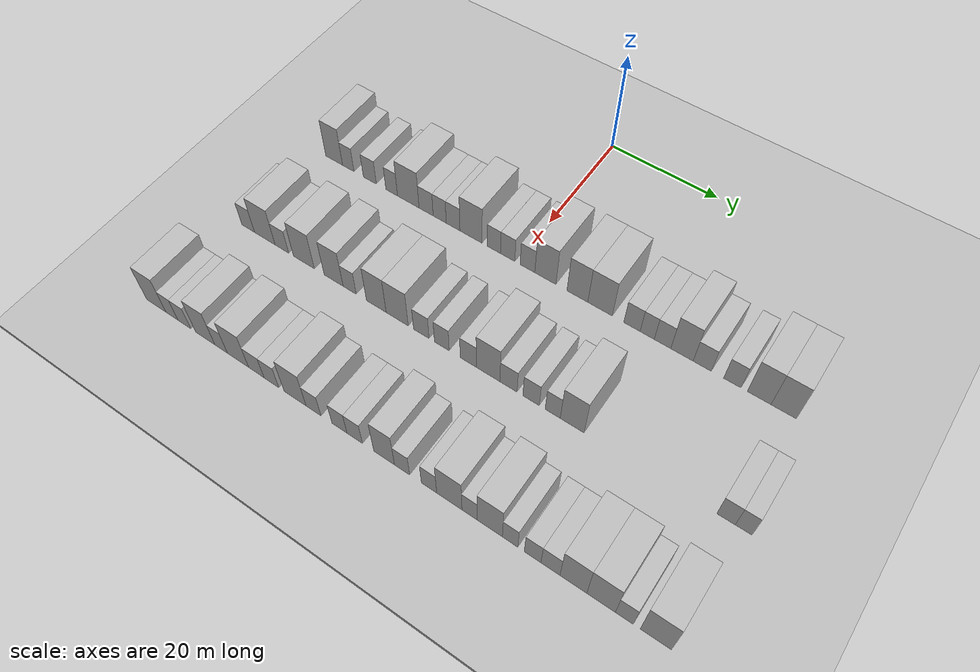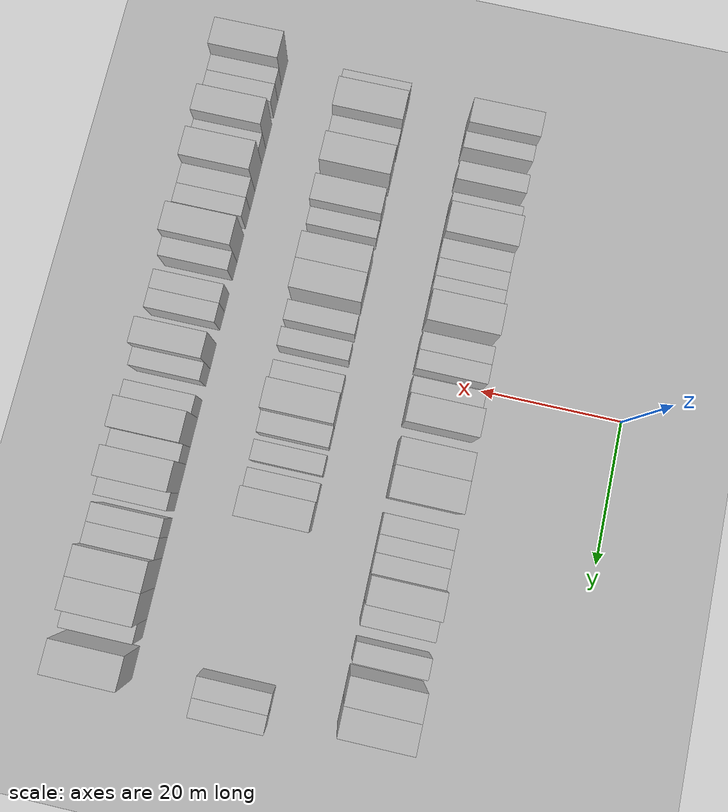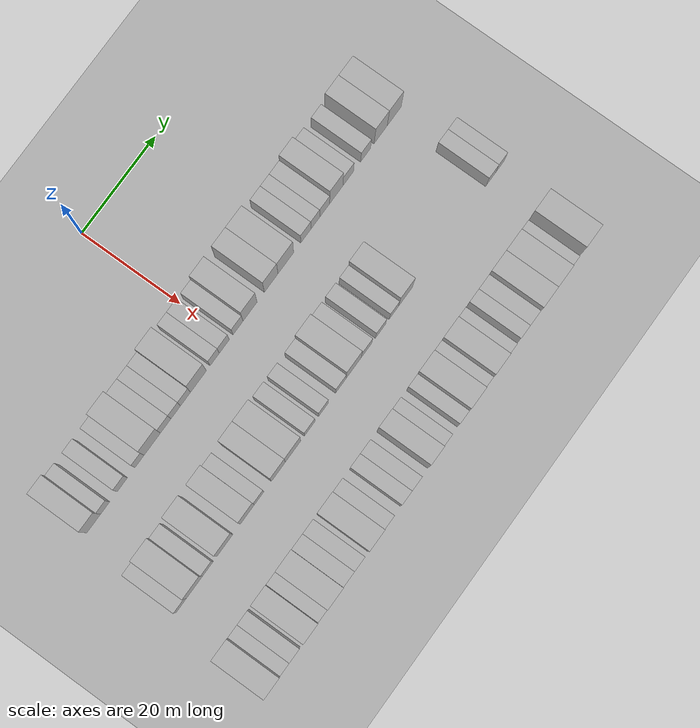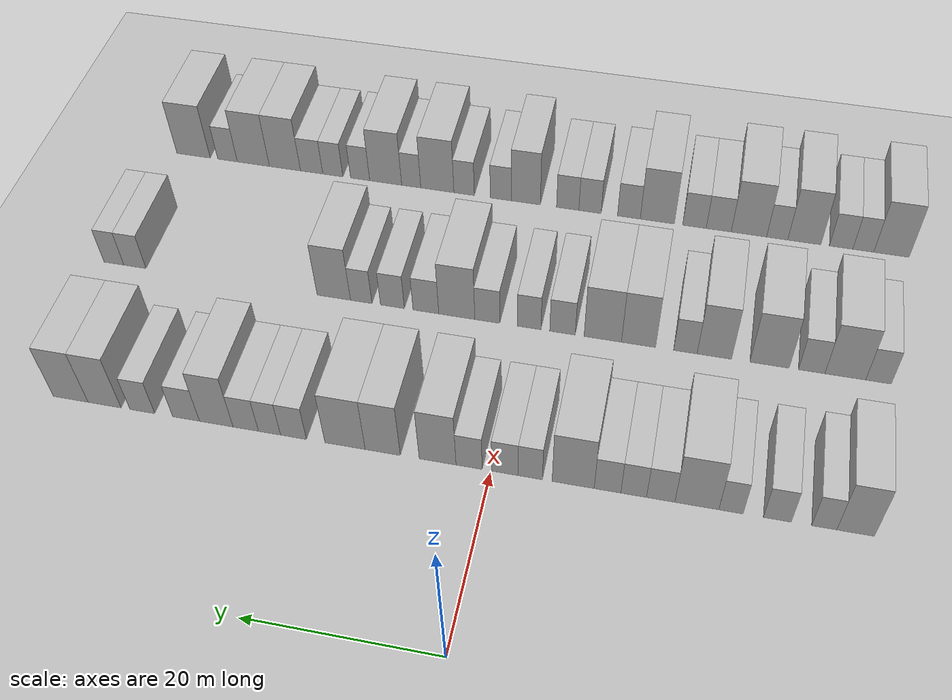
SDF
<sdf version="1.6">
 <world name="default">
  <include><name>ground_plane_1</name><uri>model://HANNAS_ground_plane</uri></include>
  <include>
   <name>ground_plane_2</name>
   <uri>model://HANNAS_ground_plane</uri>
   <pose>100 0 0  0 0 0</pose>
  </include>
  <model name="building_42">
   <static>1</static>
   <pose>25.0000 -36.6581 0 0.000000 0.000000 0.000000</pose>
   <link name="link">
    <pose>0 0 4.50 0 0 0</pose>
    <collision name="collision"><geometry><box><size>10.0000 3.6384 9.0000</size></box></geometry></collision>
    <visual name="visual">
     <cast_shadows>0</cast_shadows>
     <geometry><box><size>10.0000 3.6384 9.0000</size></box></geometry>
     <material>
      <script>
       <uri>model://HANNAS_wall/materials/scripts</uri>
       <uri>model://HANNAS_wall/materials/textures</uri>
       <name>vrc/HANNAS_wall</name>
      </script>
     </material>
    </visual>
   </link>
  </model>
  <model name="building_43">
   <static>1</static>
   <pose>25.0000 -33.6172 0 0.000000 0.000000 0.000000</pose>
   <link name="link">
    <pose>0 0 3.00 0 0 0</pose>
    <collision name="collision"><geometry><box><size>10.0000 2.4435 6.0000</size></box></geometry></collision>
    <visual name="visual">
     <cast_shadows>0</cast_shadows>
     <geometry><box><size>10.0000 2.4435 6.0000</size></box></geometry>
     <material>
      <script>
       <uri>model://HANNAS_wall/materials/scripts</uri>
       <uri>model://HANNAS_wall/materials/textures</uri>
       <name>vrc/HANNAS_wall</name>
      </script>
     </material>
    </visual>
   </link>
  </model>
  <model name="building_44">
   <static>1</static>
   <pose>25.0000 -29.0254 0 0.000000 0.000000 0.000000</pose>
   <link name="link">
    <pose>0 0 3.00 0 0 0</pose>
    <collision name="collision"><geometry><box><size>10.0000 2.7402 6.0000</size></box></geometry></collision>
    <visual name="visual">
     <cast_shadows>0</cast_shadows>
     <geometry><box><size>10.0000 2.7402 6.0000</size></box></geometry>
     <material>
      <script>
       <uri>model://HANNAS_wall/materials/scripts</uri>
       <uri>model://HANNAS_wall/materials/textures</uri>
       <name>vrc/HANNAS_wall</name>
      </script>
     </material>
    </visual>
   </link>
  </model>
  <model name="building_45">
   <static>1</static>
   <pose>25.0000 -24.4504 0 0.000000 0.000000 0.000000</pose>
   <link name="link">
    <pose>0 0 3.00 0 0 0</pose>
    <collision name="collision"><geometry><box><size>10.0000 2.4099 6.0000</size></box></geometry></collision>
    <visual name="visual">
     <cast_shadows>0</cast_shadows>
     <geometry><box><size>10.0000 2.4099 6.0000</size></box></geometry>
     <material>
      <script>
       <uri>model://HANNAS_wall/materials/scripts</uri>
       <uri>model://HANNAS_wall/materials/textures</uri>
       <name>vrc/HANNAS_wall</name>
      </script>
     </material>
    </visual>
   </link>
  </model>
  <model name="building_46">
   <static>1</static>
   <pose>25.0000 -21.0472 0 0.000000 0.000000 0.000000</pose>
   <link name="link">
    <pose>0 0 4.50 0 0 0</pose>
    <collision name="collision"><geometry><box><size>10.0000 4.3964 9.0000</size></box></geometry></collision>
    <visual name="visual">
     <cast_shadows>0</cast_shadows>
     <geometry><box><size>10.0000 4.3964 9.0000</size></box></geometry>
     <material>
      <script>
       <uri>model://HANNAS_wall/materials/scripts</uri>
       <uri>model://HANNAS_wall/materials/textures</uri>
       <name>vrc/HANNAS_wall</name>
      </script>
     </material>
    </visual>
   </link>
  </model>
  <model name="building_47">
   <static>1</static>
   <pose>25.0000 -17.4284 0 0.000000 0.000000 0.000000</pose>
   <link name="link">
    <pose>0 0 3.00 0 0 0</pose>
    <collision name="collision"><geometry><box><size>10.0000 2.8413 6.0000</size></box></geometry></collision>
    <visual name="visual">
     <cast_shadows>0</cast_shadows>
     <geometry><box><size>10.0000 2.8413 6.0000</size></box></geometry>
     <material>
      <script>
       <uri>model://HANNAS_wall/materials/scripts</uri>
       <uri>model://HANNAS_wall/materials/textures</uri>
       <name>vrc/HANNAS_wall</name>
      </script>
     </material>
    </visual>
   </link>
  </model>
  <model name="building_48">
   <static>1</static>
   <pose>25.0000 -14.7059 0 0.000000 0.000000 0.000000</pose>
   <link name="link">
    <pose>0 0 3.00 0 0 0</pose>
    <collision name="collision"><geometry><box><size>10.0000 2.6036 6.0000</size></box></geometry></collision>
    <visual name="visual">
     <cast_shadows>0</cast_shadows>
     <geometry><box><size>10.0000 2.6036 6.0000</size></box></geometry>
     <material>
      <script>
       <uri>model://HANNAS_wall/materials/scripts</uri>
       <uri>model://HANNAS_wall/materials/textures</uri>
       <name>vrc/HANNAS_wall</name>
      </script>
     </material>
    </visual>
   </link>
  </model>
  <model name="building_49">
   <static>1</static>
   <pose>25.0000 -12.0527 0 0.000000 0.000000 0.000000</pose>
   <link name="link">
    <pose>0 0 3.00 0 0 0</pose>
    <collision name="collision"><geometry><box><size>10.0000 2.7029 6.0000</size></box></geometry></collision>
    <visual name="visual">
     <cast_shadows>0</cast_shadows>
     <geometry><box><size>10.0000 2.7029 6.0000</size></box></geometry>
     <material>
      <script>
       <uri>model://HANNAS_wall/materials/scripts</uri>
       <uri>model://HANNAS_wall/materials/textures</uri>
       <name>vrc/HANNAS_wall</name>
      </script>
     </material>
    </visual>
   </link>
  </model>
  <model name="building_50">
   <static>1</static>
   <pose>25.0000 -8.5462 0 0.000000 0.000000 0.000000</pose>
   <link name="link">
    <pose>0 0 4.50 0 0 0</pose>
    <collision name="collision"><geometry><box><size>10.0000 4.3101 9.0000</size></box></geometry></collision>
    <visual name="visual">
     <cast_shadows>0</cast_shadows>
     <geometry><box><size>10.0000 4.3101 9.0000</size></box></geometry>
     <material>
      <script>
       <uri>model://HANNAS_wall/materials/scripts</uri>
       <uri>model://HANNAS_wall/materials/textures</uri>
       <name>vrc/HANNAS_wall</name>
      </script>
     </material>
    </visual>
   </link>
  </model>
  <model name="building_51">
   <static>1</static>
   <pose>25.0000 -4.1313 0 0.000000 0.000000 0.000000</pose>
   <link name="link">
    <pose>0 0 3.00 0 0 0</pose>
    <collision name="collision"><geometry><box><size>10.0000 2.5198 6.0000</size></box></geometry></collision>
    <visual name="visual">
     <cast_shadows>0</cast_shadows>
     <geometry><box><size>10.0000 2.5198 6.0000</size></box></geometry>
     <material>
      <script>
       <uri>model://HANNAS_wall/materials/scripts</uri>
       <uri>model://HANNAS_wall/materials/textures</uri>
       <name>vrc/HANNAS_wall</name>
      </script>
     </material>
    </visual>
   </link>
  </model>
  <model name="building_52">
   <static>1</static>
   <pose>25.0000 -1.5104 0 0.000000 0.000000 0.000000</pose>
   <link name="link">
    <pose>0 0 3.00 0 0 0</pose>
    <collision name="collision"><geometry><box><size>10.0000 2.7219 6.0000</size></box></geometry></collision>
    <visual name="visual">
     <cast_shadows>0</cast_shadows>
     <geometry><box><size>10.0000 2.7219 6.0000</size></box></geometry>
     <material>
      <script>
       <uri>model://HANNAS_wall/materials/scripts</uri>
       <uri>model://HANNAS_wall/materials/textures</uri>
       <name>vrc/HANNAS_wall</name>
      </script>
     </material>
    </visual>
   </link>
  </model>
  <model name="building_53">
   <static>1</static>
   <pose>25.0000 2.2171 0 0.000000 0.000000 0.000000</pose>
   <link name="link">
    <pose>0 0 3.00 0 0 0</pose>
    <collision name="collision"><geometry><box><size>10.0000 2.7331 6.0000</size></box></geometry></collision>
    <visual name="visual">
     <cast_shadows>0</cast_shadows>
     <geometry><box><size>10.0000 2.7331 6.0000</size></box></geometry>
     <material>
      <script>
       <uri>model://HANNAS_wall/materials/scripts</uri>
       <uri>model://HANNAS_wall/materials/textures</uri>
       <name>vrc/HANNAS_wall</name>
      </script>
     </material>
    </visual>
   </link>
  </model>
  <model name="building_54">
   <static>1</static>
   <pose>25.0000 5.5226 0 0.000000 0.000000 0.000000</pose>
   <link name="link">
    <pose>0 0 4.50 0 0 0</pose>
    <collision name="collision"><geometry><box><size>10.0000 3.8780 9.0000</size></box></geometry></collision>
    <visual name="visual">
     <cast_shadows>0</cast_shadows>
     <geometry><box><size>10.0000 3.8780 9.0000</size></box></geometry>
     <material>
      <script>
       <uri>model://HANNAS_wall/materials/scripts</uri>
       <uri>model://HANNAS_wall/materials/textures</uri>
       <name>vrc/HANNAS_wall</name>
      </script>
     </material>
    </visual>
   </link>
  </model>
  <model name="building_55">
   <static>1</static>
   <pose>25.0000 11.3339 0 0.000000 0.000000 0.000000</pose>
   <link name="link">
    <pose>0 0 4.50 0 0 0</pose>
    <collision name="collision"><geometry><box><size>10.0000 3.7448 9.0000</size></box></geometry></collision>
    <visual name="visual">
     <cast_shadows>0</cast_shadows>
     <geometry><box><size>10.0000 3.7448 9.0000</size></box></geometry>
     <material>
      <script>
       <uri>model://HANNAS_wall/materials/scripts</uri>
       <uri>model://HANNAS_wall/materials/textures</uri>
       <name>vrc/HANNAS_wall</name>
      </script>
     </material>
    </visual>
   </link>
  </model>
  <model name="building_56">
   <static>1</static>
   <pose>25.0000 15.3675 0 0.000000 0.000000 0.000000</pose>
   <link name="link">
    <pose>0 0 4.50 0 0 0</pose>
    <collision name="collision"><geometry><box><size>10.0000 4.3223 9.0000</size></box></geometry></collision>
    <visual name="visual">
     <cast_shadows>0</cast_shadows>
     <geometry><box><size>10.0000 4.3223 9.0000</size></box></geometry>
     <material>
      <script>
       <uri>model://HANNAS_wall/materials/scripts</uri>
       <uri>model://HANNAS_wall/materials/textures</uri>
       <name>vrc/HANNAS_wall</name>
      </script>
     </material>
    </visual>
   </link>
  </model>
  <model name="building_57">
   <static>1</static>
   <pose>25.0000 20.9321 0 0.000000 0.000000 0.000000</pose>
   <link name="link">
    <pose>0 0 3.00 0 0 0</pose>
    <collision name="collision"><geometry><box><size>10.0000 2.8068 6.0000</size></box></geometry></collision>
    <visual name="visual">
     <cast_shadows>0</cast_shadows>
     <geometry><box><size>10.0000 2.8068 6.0000</size></box></geometry>
     <material>
      <script>
       <uri>model://HANNAS_wall/materials/scripts</uri>
       <uri>model://HANNAS_wall/materials/textures</uri>
       <name>vrc/HANNAS_wall</name>
      </script>
     </material>
    </visual>
   </link>
  </model>
  <model name="building_58">
   <static>1</static>
   <pose>25.0000 23.5413 0 0.000000 0.000000 0.000000</pose>
   <link name="link">
    <pose>0 0 3.00 0 0 0</pose>
    <collision name="collision"><geometry><box><size>10.0000 2.4117 6.0000</size></box></geometry></collision>
    <visual name="visual">
     <cast_shadows>0</cast_shadows>
     <geometry><box><size>10.0000 2.4117 6.0000</size></box></geometry>
     <material>
      <script>
       <uri>model://HANNAS_wall/materials/scripts</uri>
       <uri>model://HANNAS_wall/materials/textures</uri>
       <name>vrc/HANNAS_wall</name>
      </script>
     </material>
    </visual>
   </link>
  </model>
  <model name="building_59">
   <static>1</static>
   <pose>25.0000 26.1394 0 0.000000 0.000000 0.000000</pose>
   <link name="link">
    <pose>0 0 3.00 0 0 0</pose>
    <collision name="collision"><geometry><box><size>10.0000 2.7844 6.0000</size></box></geometry></collision>
    <visual name="visual">
     <cast_shadows>0</cast_shadows>
     <geometry><box><size>10.0000 2.7844 6.0000</size></box></geometry>
     <material>
      <script>
       <uri>model://HANNAS_wall/materials/scripts</uri>
       <uri>model://HANNAS_wall/materials/textures</uri>
       <name>vrc/HANNAS_wall</name>
      </script>
     </material>
    </visual>
   </link>
  </model>
  <model name="building_60">
   <static>1</static>
   <pose>25.0000 29.3896 0 0.000000 0.000000 0.000000</pose>
   <link name="link">
    <pose>0 0 4.50 0 0 0</pose>
    <collision name="collision"><geometry><box><size>10.0000 3.7160 9.0000</size></box></geometry></collision>
    <visual name="visual">
     <cast_shadows>0</cast_shadows>
     <geometry><box><size>10.0000 3.7160 9.0000</size></box></geometry>
     <material>
      <script>
       <uri>model://HANNAS_wall/materials/scripts</uri>
       <uri>model://HANNAS_wall/materials/textures</uri>
       <name>vrc/HANNAS_wall</name>
      </script>
     </material>
    </visual>
   </link>
  </model>
  <model name="building_61">
   <static>1</static>
   <pose>25.0000 32.7331 0 0.000000 0.000000 0.000000</pose>
   <link name="link">
    <pose>0 0 3.00 0 0 0</pose>
    <collision name="collision"><geometry><box><size>10.0000 2.9710 6.0000</size></box></geometry></collision>
    <visual name="visual">
     <cast_shadows>0</cast_shadows>
     <geometry><box><size>10.0000 2.9710 6.0000</size></box></geometry>
     <material>
      <script>
       <uri>model://HANNAS_wall/materials/scripts</uri>
       <uri>model://HANNAS_wall/materials/textures</uri>
       <name>vrc/HANNAS_wall</name>
      </script>
     </material>
    </visual>
   </link>
  </model>
  <model name="building_62">
   <static>1</static>
   <pose>25.0000 37.6116 0 0.000000 0.000000 0.000000</pose>
   <link name="link">
    <pose>0 0 3.00 0 0 0</pose>
    <collision name="collision"><geometry><box><size>10.0000 2.7861 6.0000</size></box></geometry></collision>
    <visual name="visual">
     <cast_shadows>0</cast_shadows>
     <geometry><box><size>10.0000 2.7861 6.0000</size></box></geometry>
     <material>
      <script>
       <uri>model://HANNAS_wall/materials/scripts</uri>
       <uri>model://HANNAS_wall/materials/textures</uri>
       <name>vrc/HANNAS_wall</name>
      </script>
     </material>
    </visual>
   </link>
  </model>
  <model name="building_63">
   <static>1</static>
   <pose>25.0000 41.8705 0 0.000000 0.000000 0.000000</pose>
   <link name="link">
    <pose>0 0 4.50 0 0 0</pose>
    <collision name="collision"><geometry><box><size>10.0000 3.7316 9.0000</size></box></geometry></collision>
    <visual name="visual">
     <cast_shadows>0</cast_shadows>
     <geometry><box><size>10.0000 3.7316 9.0000</size></box></geometry>
     <material>
      <script>
       <uri>model://HANNAS_wall/materials/scripts</uri>
       <uri>model://HANNAS_wall/materials/textures</uri>
       <name>vrc/HANNAS_wall</name>
      </script>
     </material>
    </visual>
   </link>
  </model>
  <model name="building_64">
   <static>1</static>
   <pose>25.0000 45.6978 0 0.000000 0.000000 0.000000</pose>
   <link name="link">
    <pose>0 0 4.50 0 0 0</pose>
    <collision name="collision"><geometry><box><size>10.0000 3.9231 9.0000</size></box></geometry></collision>
    <visual name="visual">
     <cast_shadows>0</cast_shadows>
     <geometry><box><size>10.0000 3.9231 9.0000</size></box></geometry>
     <material>
      <script>
       <uri>model://HANNAS_wall/materials/scripts</uri>
       <uri>model://HANNAS_wall/materials/textures</uri>
       <name>vrc/HANNAS_wall</name>
      </script>
     </material>
    </visual>
   </link>
  </model>
  <model name="building_146">
   <static>1</static>
   <pose>44.0000 -38.8057 0 0.000000 0.000000 0.000000</pose>
   <link name="link">
    <pose>0 0 3.00 0 0 0</pose>
    <collision name="collision"><geometry><box><size>10.0000 2.7106 6.0000</size></box></geometry></collision>
    <visual name="visual">
     <cast_shadows>0</cast_shadows>
     <geometry><box><size>10.0000 2.7106 6.0000</size></box></geometry>
     <material>
      <script>
       <uri>model://HANNAS_wall/materials/scripts</uri>
       <uri>model://HANNAS_wall/materials/textures</uri>
       <name>vrc/HANNAS_wall</name>
      </script>
     </material>
    </visual>
   </link>
  </model>
  <model name="building_147">
   <static>1</static>
   <pose>44.0000 -35.2729 0 0.000000 0.000000 0.000000</pose>
   <link name="link">
    <pose>0 0 4.50 0 0 0</pose>
    <collision name="collision"><geometry><box><size>10.0000 4.3549 9.0000</size></box></geometry></collision>
    <visual name="visual">
     <cast_shadows>0</cast_shadows>
     <geometry><box><size>10.0000 4.3549 9.0000</size></box></geometry>
     <material>
      <script>
       <uri>model://HANNAS_wall/materials/scripts</uri>
       <uri>model://HANNAS_wall/materials/textures</uri>
       <name>vrc/HANNAS_wall</name>
      </script>
     </material>
    </visual>
   </link>
  </model>
  <model name="building_148">
   <static>1</static>
   <pose>44.0000 -31.6791 0 0.000000 0.000000 0.000000</pose>
   <link name="link">
    <pose>0 0 3.00 0 0 0</pose>
    <collision name="collision"><geometry><box><size>10.0000 2.8328 6.0000</size></box></geometry></collision>
    <visual name="visual">
     <cast_shadows>0</cast_shadows>
     <geometry><box><size>10.0000 2.8328 6.0000</size></box></geometry>
     <material>
      <script>
       <uri>model://HANNAS_wall/materials/scripts</uri>
       <uri>model://HANNAS_wall/materials/textures</uri>
       <name>vrc/HANNAS_wall</name>
      </script>
     </material>
    </visual>
   </link>
  </model>
  <model name="building_149">
   <static>1</static>
   <pose>44.0000 -27.1344 0 0.000000 0.000000 0.000000</pose>
   <link name="link">
    <pose>0 0 4.50 0 0 0</pose>
    <collision name="collision"><geometry><box><size>10.0000 4.2567 9.0000</size></box></geometry></collision>
    <visual name="visual">
     <cast_shadows>0</cast_shadows>
     <geometry><box><size>10.0000 4.2567 9.0000</size></box></geometry>
     <material>
      <script>
       <uri>model://HANNAS_wall/materials/scripts</uri>
       <uri>model://HANNAS_wall/materials/textures</uri>
       <name>vrc/HANNAS_wall</name>
      </script>
     </material>
    </visual>
   </link>
  </model>
  <model name="building_150">
   <static>1</static>
   <pose>44.0000 -21.1222 0 0.000000 0.000000 0.000000</pose>
   <link name="link">
    <pose>0 0 4.50 0 0 0</pose>
    <collision name="collision"><geometry><box><size>10.0000 3.7677 9.0000</size></box></geometry></collision>
    <visual name="visual">
     <cast_shadows>0</cast_shadows>
     <geometry><box><size>10.0000 3.7677 9.0000</size></box></geometry>
     <material>
      <script>
       <uri>model://HANNAS_wall/materials/scripts</uri>
       <uri>model://HANNAS_wall/materials/textures</uri>
       <name>vrc/HANNAS_wall</name>
      </script>
     </material>
    </visual>
   </link>
  </model>
  <model name="building_151">
   <static>1</static>
   <pose>44.0000 -17.9464 0 0.000000 0.000000 0.000000</pose>
   <link name="link">
    <pose>0 0 3.00 0 0 0</pose>
    <collision name="collision"><geometry><box><size>10.0000 2.5839 6.0000</size></box></geometry></collision>
    <visual name="visual">
     <cast_shadows>0</cast_shadows>
     <geometry><box><size>10.0000 2.5839 6.0000</size></box></geometry>
     <material>
      <script>
       <uri>model://HANNAS_wall/materials/scripts</uri>
       <uri>model://HANNAS_wall/materials/textures</uri>
       <name>vrc/HANNAS_wall</name>
      </script>
     </material>
    </visual>
   </link>
  </model>
  <model name="building_152">
   <static>1</static>
   <pose>44.0000 -12.7591 0 0.000000 0.000000 0.000000</pose>
   <link name="link">
    <pose>0 0 4.50 0 0 0</pose>
    <collision name="collision"><geometry><box><size>10.0000 3.7906 9.0000</size></box></geometry></collision>
    <visual name="visual">
     <cast_shadows>0</cast_shadows>
     <geometry><box><size>10.0000 3.7906 9.0000</size></box></geometry>
     <material>
      <script>
       <uri>model://HANNAS_wall/materials/scripts</uri>
       <uri>model://HANNAS_wall/materials/textures</uri>
       <name>vrc/HANNAS_wall</name>
      </script>
     </material>
    </visual>
   </link>
  </model>
  <model name="building_153">
   <static>1</static>
   <pose>44.0000 -8.7732 0 0.000000 0.000000 0.000000</pose>
   <link name="link">
    <pose>0 0 4.50 0 0 0</pose>
    <collision name="collision"><geometry><box><size>10.0000 4.1813 9.0000</size></box></geometry></collision>
    <visual name="visual">
     <cast_shadows>0</cast_shadows>
     <geometry><box><size>10.0000 4.1813 9.0000</size></box></geometry>
     <material>
      <script>
       <uri>model://HANNAS_wall/materials/scripts</uri>
       <uri>model://HANNAS_wall/materials/textures</uri>
       <name>vrc/HANNAS_wall</name>
      </script>
     </material>
    </visual>
   </link>
  </model>
  <model name="building_154">
   <static>1</static>
   <pose>44.0000 -4.2454 0 0.000000 0.000000 0.000000</pose>
   <link name="link">
    <pose>0 0 3.00 0 0 0</pose>
    <collision name="collision"><geometry><box><size>10.0000 2.8743 6.0000</size></box></geometry></collision>
    <visual name="visual">
     <cast_shadows>0</cast_shadows>
     <geometry><box><size>10.0000 2.8743 6.0000</size></box></geometry>
     <material>
      <script>
       <uri>model://HANNAS_wall/materials/scripts</uri>
       <uri>model://HANNAS_wall/materials/textures</uri>
       <name>vrc/HANNAS_wall</name>
      </script>
     </material>
    </visual>
   </link>
  </model>
  <model name="building_155">
   <static>1</static>
   <pose>44.0000 -0.4695 0 0.000000 0.000000 0.000000</pose>
   <link name="link">
    <pose>0 0 3.00 0 0 0</pose>
    <collision name="collision"><geometry><box><size>10.0000 2.6775 6.0000</size></box></geometry></collision>
    <visual name="visual">
     <cast_shadows>0</cast_shadows>
     <geometry><box><size>10.0000 2.6775 6.0000</size></box></geometry>
     <material>
      <script>
       <uri>model://HANNAS_wall/materials/scripts</uri>
       <uri>model://HANNAS_wall/materials/textures</uri>
       <name>vrc/HANNAS_wall</name>
      </script>
     </material>
    </visual>
   </link>
  </model>
  <model name="building_156">
   <static>1</static>
   <pose>44.0000 4.3025 0 0.000000 0.000000 0.000000</pose>
   <link name="link">
    <pose>0 0 3.00 0 0 0</pose>
    <collision name="collision"><geometry><box><size>10.0000 2.8665 6.0000</size></box></geometry></collision>
    <visual name="visual">
     <cast_shadows>0</cast_shadows>
     <geometry><box><size>10.0000 2.8665 6.0000</size></box></geometry>
     <material>
      <script>
       <uri>model://HANNAS_wall/materials/scripts</uri>
       <uri>model://HANNAS_wall/materials/textures</uri>
       <name>vrc/HANNAS_wall</name>
      </script>
     </material>
    </visual>
   </link>
  </model>
  <model name="building_157">
   <static>1</static>
   <pose>44.0000 7.8190 0 0.000000 0.000000 0.000000</pose>
   <link name="link">
    <pose>0 0 4.50 0 0 0</pose>
    <collision name="collision"><geometry><box><size>10.0000 4.1665 9.0000</size></box></geometry></collision>
    <visual name="visual">
     <cast_shadows>0</cast_shadows>
     <geometry><box><size>10.0000 4.1665 9.0000</size></box></geometry>
     <material>
      <script>
       <uri>model://HANNAS_wall/materials/scripts</uri>
       <uri>model://HANNAS_wall/materials/textures</uri>
       <name>vrc/HANNAS_wall</name>
      </script>
     </material>
    </visual>
   </link>
  </model>
  <model name="building_158">
   <static>1</static>
   <pose>44.0000 11.3945 0 0.000000 0.000000 0.000000</pose>
   <link name="link">
    <pose>0 0 3.00 0 0 0</pose>
    <collision name="collision"><geometry><box><size>10.0000 2.9843 6.0000</size></box></geometry></collision>
    <visual name="visual">
     <cast_shadows>0</cast_shadows>
     <geometry><box><size>10.0000 2.9843 6.0000</size></box></geometry>
     <material>
      <script>
       <uri>model://HANNAS_wall/materials/scripts</uri>
       <uri>model://HANNAS_wall/materials/textures</uri>
       <name>vrc/HANNAS_wall</name>
      </script>
     </material>
    </visual>
   </link>
  </model>
  <model name="building_159">
   <static>1</static>
   <pose>44.0000 15.2870 0 0.000000 0.000000 0.000000</pose>
   <link name="link">
    <pose>0 0 3.00 0 0 0</pose>
    <collision name="collision"><geometry><box><size>10.0000 2.8008 6.0000</size></box></geometry></collision>
    <visual name="visual">
     <cast_shadows>0</cast_shadows>
     <geometry><box><size>10.0000 2.8008 6.0000</size></box></geometry>
     <material>
      <script>
       <uri>model://HANNAS_wall/materials/scripts</uri>
       <uri>model://HANNAS_wall/materials/textures</uri>
       <name>vrc/HANNAS_wall</name>
      </script>
     </material>
    </visual>
   </link>
  </model>
  <model name="building_160">
   <static>1</static>
   <pose>44.0000 18.9508 0 0.000000 0.000000 0.000000</pose>
   <link name="link">
    <pose>0 0 3.00 0 0 0</pose>
    <collision name="collision"><geometry><box><size>10.0000 2.5268 6.0000</size></box></geometry></collision>
    <visual name="visual">
     <cast_shadows>0</cast_shadows>
     <geometry><box><size>10.0000 2.5268 6.0000</size></box></geometry>
     <material>
      <script>
       <uri>model://HANNAS_wall/materials/scripts</uri>
       <uri>model://HANNAS_wall/materials/textures</uri>
       <name>vrc/HANNAS_wall</name>
      </script>
     </material>
    </visual>
   </link>
  </model>
  <model name="building_161">
   <static>1</static>
   <pose>44.0000 22.1885 0 0.000000 0.000000 0.000000</pose>
   <link name="link">
    <pose>0 0 4.50 0 0 0</pose>
    <collision name="collision"><geometry><box><size>10.0000 3.9486 9.0000</size></box></geometry></collision>
    <visual name="visual">
     <cast_shadows>0</cast_shadows>
     <geometry><box><size>10.0000 3.9486 9.0000</size></box></geometry>
     <material>
      <script>
       <uri>model://HANNAS_wall/materials/scripts</uri>
       <uri>model://HANNAS_wall/materials/textures</uri>
       <name>vrc/HANNAS_wall</name>
      </script>
     </material>
    </visual>
   </link>
  </model>
  <model name="building_162">
   <static>1</static>
   <pose>44.0000 46.2623 0 0.000000 0.000000 0.000000</pose>
   <link name="link">
    <pose>0 0 3.00 0 0 0</pose>
    <collision name="collision"><geometry><box><size>10.0000 2.7330 6.0000</size></box></geometry></collision>
    <visual name="visual">
     <cast_shadows>0</cast_shadows>
     <geometry><box><size>10.0000 2.7330 6.0000</size></box></geometry>
     <material>
      <script>
       <uri>model://HANNAS_wall/materials/scripts</uri>
       <uri>model://HANNAS_wall/materials/textures</uri>
       <name>vrc/HANNAS_wall</name>
      </script>
     </material>
    </visual>
   </link>
  </model>
  <model name="building_163">
   <static>1</static>
   <pose>44.0000 48.8584 0 0.000000 0.000000 0.000000</pose>
   <link name="link">
    <pose>0 0 3.00 0 0 0</pose>
    <collision name="collision"><geometry><box><size>10.0000 2.4591 6.0000</size></box></geometry></collision>
    <visual name="visual">
     <cast_shadows>0</cast_shadows>
     <geometry><box><size>10.0000 2.4591 6.0000</size></box></geometry>
     <material>
      <script>
       <uri>model://HANNAS_wall/materials/scripts</uri>
       <uri>model://HANNAS_wall/materials/textures</uri>
       <name>vrc/HANNAS_wall</name>
      </script>
     </material>
    </visual>
   </link>
  </model>
  <model name="building_261">
   <static>1</static>
   <pose>63.0000 -40.2397 0 0.000000 0.000000 0.000000</pose>
   <link name="link">
    <pose>0 0 4.50 0 0 0</pose>
    <collision name="collision"><geometry><box><size>10.0000 4.0763 9.0000</size></box></geometry></collision>
    <visual name="visual">
     <cast_shadows>0</cast_shadows>
     <geometry><box><size>10.0000 4.0763 9.0000</size></box></geometry>
     <material>
      <script>
       <uri>model://HANNAS_wall/materials/scripts</uri>
       <uri>model://HANNAS_wall/materials/textures</uri>
       <name>vrc/HANNAS_wall</name>
      </script>
     </material>
    </visual>
   </link>
  </model>
  <model name="building_262">
   <static>1</static>
   <pose>63.0000 -36.9821 0 0.000000 0.000000 0.000000</pose>
   <link name="link">
    <pose>0 0 3.00 0 0 0</pose>
    <collision name="collision"><geometry><box><size>10.0000 2.4388 6.0000</size></box></geometry></collision>
    <visual name="visual">
     <cast_shadows>0</cast_shadows>
     <geometry><box><size>10.0000 2.4388 6.0000</size></box></geometry>
     <material>
      <script>
       <uri>model://HANNAS_wall/materials/scripts</uri>
       <uri>model://HANNAS_wall/materials/textures</uri>
       <name>vrc/HANNAS_wall</name>
      </script>
     </material>
    </visual>
   </link>
  </model>
  <model name="building_263">
   <static>1</static>
   <pose>63.0000 -34.4046 0 0.000000 0.000000 0.000000</pose>
   <link name="link">
    <pose>0 0 3.00 0 0 0</pose>
    <collision name="collision"><geometry><box><size>10.0000 2.7162 6.0000</size></box></geometry></collision>
    <visual name="visual">
     <cast_shadows>0</cast_shadows>
     <geometry><box><size>10.0000 2.7162 6.0000</size></box></geometry>
     <material>
      <script>
       <uri>model://HANNAS_wall/materials/scripts</uri>
       <uri>model://HANNAS_wall/materials/textures</uri>
       <name>vrc/HANNAS_wall</name>
      </script>
     </material>
    </visual>
   </link>
  </model>
  <model name="building_264">
   <static>1</static>
   <pose>63.0000 -30.1054 0 0.000000 0.000000 0.000000</pose>
   <link name="link">
    <pose>0 0 4.50 0 0 0</pose>
    <collision name="collision"><geometry><box><size>10.0000 3.8822 9.0000</size></box></geometry></collision>
    <visual name="visual">
     <cast_shadows>0</cast_shadows>
     <geometry><box><size>10.0000 3.8822 9.0000</size></box></geometry>
     <material>
      <script>
       <uri>model://HANNAS_wall/materials/scripts</uri>
       <uri>model://HANNAS_wall/materials/textures</uri>
       <name>vrc/HANNAS_wall</name>
      </script>
     </material>
    </visual>
   </link>
  </model>
  <model name="building_265">
   <static>1</static>
   <pose>63.0000 -26.9157 0 0.000000 0.000000 0.000000</pose>
   <link name="link">
    <pose>0 0 3.00 0 0 0</pose>
    <collision name="collision"><geometry><box><size>10.0000 2.4972 6.0000</size></box></geometry></collision>
    <visual name="visual">
     <cast_shadows>0</cast_shadows>
     <geometry><box><size>10.0000 2.4972 6.0000</size></box></geometry>
     <material>
      <script>
       <uri>model://HANNAS_wall/materials/scripts</uri>
       <uri>model://HANNAS_wall/materials/textures</uri>
       <name>vrc/HANNAS_wall</name>
      </script>
     </material>
    </visual>
   </link>
  </model>
  <model name="building_266">
   <static>1</static>
   <pose>63.0000 -23.5670 0 0.000000 0.000000 0.000000</pose>
   <link name="link">
    <pose>0 0 4.50 0 0 0</pose>
    <collision name="collision"><geometry><box><size>10.0000 4.2001 9.0000</size></box></geometry></collision>
    <visual name="visual">
     <cast_shadows>0</cast_shadows>
     <geometry><box><size>10.0000 4.2001 9.0000</size></box></geometry>
     <material>
      <script>
       <uri>model://HANNAS_wall/materials/scripts</uri>
       <uri>model://HANNAS_wall/materials/textures</uri>
       <name>vrc/HANNAS_wall</name>
      </script>
     </material>
    </visual>
   </link>
  </model>
  <model name="building_267">
   <static>1</static>
   <pose>63.0000 -19.9743 0 0.000000 0.000000 0.000000</pose>
   <link name="link">
    <pose>0 0 3.00 0 0 0</pose>
    <collision name="collision"><geometry><box><size>10.0000 2.9853 6.0000</size></box></geometry></collision>
    <visual name="visual">
     <cast_shadows>0</cast_shadows>
     <geometry><box><size>10.0000 2.9853 6.0000</size></box></geometry>
     <material>
      <script>
       <uri>model://HANNAS_wall/materials/scripts</uri>
       <uri>model://HANNAS_wall/materials/textures</uri>
       <name>vrc/HANNAS_wall</name>
      </script>
     </material>
    </visual>
   </link>
  </model>
  <model name="building_268">
   <static>1</static>
   <pose>63.0000 -17.0714 0 0.000000 0.000000 0.000000</pose>
   <link name="link">
    <pose>0 0 3.00 0 0 0</pose>
    <collision name="collision"><geometry><box><size>10.0000 2.8204 6.0000</size></box></geometry></collision>
    <visual name="visual">
     <cast_shadows>0</cast_shadows>
     <geometry><box><size>10.0000 2.8204 6.0000</size></box></geometry>
     <material>
      <script>
       <uri>model://HANNAS_wall/materials/scripts</uri>
       <uri>model://HANNAS_wall/materials/textures</uri>
       <name>vrc/HANNAS_wall</name>
      </script>
     </material>
    </visual>
   </link>
  </model>
  <model name="building_269">
   <static>1</static>
   <pose>63.0000 -12.6002 0 0.000000 0.000000 0.000000</pose>
   <link name="link">
    <pose>0 0 4.50 0 0 0</pose>
    <collision name="collision"><geometry><box><size>10.0000 4.1221 9.0000</size></box></geometry></collision>
    <visual name="visual">
     <cast_shadows>0</cast_shadows>
     <geometry><box><size>10.0000 4.1221 9.0000</size></box></geometry>
     <material>
      <script>
       <uri>model://HANNAS_wall/materials/scripts</uri>
       <uri>model://HANNAS_wall/materials/textures</uri>
       <name>vrc/HANNAS_wall</name>
      </script>
     </material>
    </visual>
   </link>
  </model>
  <model name="building_270">
   <static>1</static>
   <pose>63.0000 -9.1589 0 0.000000 0.000000 0.000000</pose>
   <link name="link">
    <pose>0 0 3.00 0 0 0</pose>
    <collision name="collision"><geometry><box><size>10.0000 2.7605 6.0000</size></box></geometry></collision>
    <visual name="visual">
     <cast_shadows>0</cast_shadows>
     <geometry><box><size>10.0000 2.7605 6.0000</size></box></geometry>
     <material>
      <script>
       <uri>model://HANNAS_wall/materials/scripts</uri>
       <uri>model://HANNAS_wall/materials/textures</uri>
       <name>vrc/HANNAS_wall</name>
      </script>
     </material>
    </visual>
   </link>
  </model>
  <model name="building_271">
   <static>1</static>
   <pose>63.0000 -4.4161 0 0.000000 0.000000 0.000000</pose>
   <link name="link">
    <pose>0 0 3.00 0 0 0</pose>
    <collision name="collision"><geometry><box><size>10.0000 2.7250 6.0000</size></box></geometry></collision>
    <visual name="visual">
     <cast_shadows>0</cast_shadows>
     <geometry><box><size>10.0000 2.7250 6.0000</size></box></geometry>
     <material>
      <script>
       <uri>model://HANNAS_wall/materials/scripts</uri>
       <uri>model://HANNAS_wall/materials/textures</uri>
       <name>vrc/HANNAS_wall</name>
      </script>
     </material>
    </visual>
   </link>
  </model>
  <model name="building_272">
   <static>1</static>
   <pose>63.0000 -1.6785 0 0.000000 0.000000 0.000000</pose>
   <link name="link">
    <pose>0 0 3.00 0 0 0</pose>
    <collision name="collision"><geometry><box><size>10.0000 2.7502 6.0000</size></box></geometry></collision>
    <visual name="visual">
     <cast_shadows>0</cast_shadows>
     <geometry><box><size>10.0000 2.7502 6.0000</size></box></geometry>
     <material>
      <script>
       <uri>model://HANNAS_wall/materials/scripts</uri>
       <uri>model://HANNAS_wall/materials/textures</uri>
       <name>vrc/HANNAS_wall</name>
      </script>
     </material>
    </visual>
   </link>
  </model>
  <model name="building_273">
   <static>1</static>
   <pose>63.0000 3.5111 0 0.000000 0.000000 0.000000</pose>
   <link name="link">
    <pose>0 0 4.50 0 0 0</pose>
    <collision name="collision"><geometry><box><size>10.0000 3.6289 9.0000</size></box></geometry></collision>
    <visual name="visual">
     <cast_shadows>0</cast_shadows>
     <geometry><box><size>10.0000 3.6289 9.0000</size></box></geometry>
     <material>
      <script>
       <uri>model://HANNAS_wall/materials/scripts</uri>
       <uri>model://HANNAS_wall/materials/textures</uri>
       <name>vrc/HANNAS_wall</name>
      </script>
     </material>
    </visual>
   </link>
  </model>
  <model name="building_274">
   <static>1</static>
   <pose>63.0000 6.6230 0 0.000000 0.000000 0.000000</pose>
   <link name="link">
    <pose>0 0 3.00 0 0 0</pose>
    <collision name="collision"><geometry><box><size>10.0000 2.5950 6.0000</size></box></geometry></collision>
    <visual name="visual">
     <cast_shadows>0</cast_shadows>
     <geometry><box><size>10.0000 2.5950 6.0000</size></box></geometry>
     <material>
      <script>
       <uri>model://HANNAS_wall/materials/scripts</uri>
       <uri>model://HANNAS_wall/materials/textures</uri>
       <name>vrc/HANNAS_wall</name>
      </script>
     </material>
    </visual>
   </link>
  </model>
  <model name="building_275">
   <static>1</static>
   <pose>63.0000 11.2024 0 0.000000 0.000000 0.000000</pose>
   <link name="link">
    <pose>0 0 3.00 0 0 0</pose>
    <collision name="collision"><geometry><box><size>10.0000 2.5637 6.0000</size></box></geometry></collision>
    <visual name="visual">
     <cast_shadows>0</cast_shadows>
     <geometry><box><size>10.0000 2.5637 6.0000</size></box></geometry>
     <material>
      <script>
       <uri>model://HANNAS_wall/materials/scripts</uri>
       <uri>model://HANNAS_wall/materials/textures</uri>
       <name>vrc/HANNAS_wall</name>
      </script>
     </material>
    </visual>
   </link>
  </model>
  <model name="building_276">
   <static>1</static>
   <pose>63.0000 14.5805 0 0.000000 0.000000 0.000000</pose>
   <link name="link">
    <pose>0 0 4.50 0 0 0</pose>
    <collision name="collision"><geometry><box><size>10.0000 4.1926 9.0000</size></box></geometry></collision>
    <visual name="visual">
     <cast_shadows>0</cast_shadows>
     <geometry><box><size>10.0000 4.1926 9.0000</size></box></geometry>
     <material>
      <script>
       <uri>model://HANNAS_wall/materials/scripts</uri>
       <uri>model://HANNAS_wall/materials/textures</uri>
       <name>vrc/HANNAS_wall</name>
      </script>
     </material>
    </visual>
   </link>
  </model>
  <model name="building_277">
   <static>1</static>
   <pose>63.0000 17.8904 0 0.000000 0.000000 0.000000</pose>
   <link name="link">
    <pose>0 0 3.00 0 0 0</pose>
    <collision name="collision"><geometry><box><size>10.0000 2.4272 6.0000</size></box></geometry></collision>
    <visual name="visual">
     <cast_shadows>0</cast_shadows>
     <geometry><box><size>10.0000 2.4272 6.0000</size></box></geometry>
     <material>
      <script>
       <uri>model://HANNAS_wall/materials/scripts</uri>
       <uri>model://HANNAS_wall/materials/textures</uri>
       <name>vrc/HANNAS_wall</name>
      </script>
     </material>
    </visual>
   </link>
  </model>
  <model name="building_278">
   <static>1</static>
   <pose>63.0000 21.1476 0 0.000000 0.000000 0.000000</pose>
   <link name="link">
    <pose>0 0 4.50 0 0 0</pose>
    <collision name="collision"><geometry><box><size>10.0000 4.0873 9.0000</size></box></geometry></collision>
    <visual name="visual">
     <cast_shadows>0</cast_shadows>
     <geometry><box><size>10.0000 4.0873 9.0000</size></box></geometry>
     <material>
      <script>
       <uri>model://HANNAS_wall/materials/scripts</uri>
       <uri>model://HANNAS_wall/materials/textures</uri>
       <name>vrc/HANNAS_wall</name>
      </script>
     </material>
    </visual>
   </link>
  </model>
  <model name="building_279">
   <static>1</static>
   <pose>63.0000 24.4147 0 0.000000 0.000000 0.000000</pose>
   <link name="link">
    <pose>0 0 3.00 0 0 0</pose>
    <collision name="collision"><geometry><box><size>10.0000 2.4468 6.0000</size></box></geometry></collision>
    <visual name="visual">
     <cast_shadows>0</cast_shadows>
     <geometry><box><size>10.0000 2.4468 6.0000</size></box></geometry>
     <material>
      <script>
       <uri>model://HANNAS_wall/materials/scripts</uri>
       <uri>model://HANNAS_wall/materials/textures</uri>
       <name>vrc/HANNAS_wall</name>
      </script>
     </material>
    </visual>
   </link>
  </model>
  <model name="building_280">
   <static>1</static>
   <pose>63.0000 27.9346 0 0.000000 0.000000 0.000000</pose>
   <link name="link">
    <pose>0 0 3.00 0 0 0</pose>
    <collision name="collision"><geometry><box><size>10.0000 2.5931 6.0000</size></box></geometry></collision>
    <visual name="visual">
     <cast_shadows>0</cast_shadows>
     <geometry><box><size>10.0000 2.5931 6.0000</size></box></geometry>
     <material>
      <script>
       <uri>model://HANNAS_wall/materials/scripts</uri>
       <uri>model://HANNAS_wall/materials/textures</uri>
       <name>vrc/HANNAS_wall</name>
      </script>
     </material>
    </visual>
   </link>
  </model>
  <model name="building_281">
   <static>1</static>
   <pose>63.0000 30.6809 0 0.000000 0.000000 0.000000</pose>
   <link name="link">
    <pose>0 0 3.00 0 0 0</pose>
    <collision name="collision"><geometry><box><size>10.0000 2.8995 6.0000</size></box></geometry></collision>
    <visual name="visual">
     <cast_shadows>0</cast_shadows>
     <geometry><box><size>10.0000 2.8995 6.0000</size></box></geometry>
     <material>
      <script>
       <uri>model://HANNAS_wall/materials/scripts</uri>
       <uri>model://HANNAS_wall/materials/textures</uri>
       <name>vrc/HANNAS_wall</name>
      </script>
     </material>
    </visual>
   </link>
  </model>
  <model name="building_282">
   <static>1</static>
   <pose>63.0000 34.1619 0 0.000000 0.000000 0.000000</pose>
   <link name="link">
    <pose>0 0 4.50 0 0 0</pose>
    <collision name="collision"><geometry><box><size>10.0000 4.0626 9.0000</size></box></geometry></collision>
    <visual name="visual">
     <cast_shadows>0</cast_shadows>
     <geometry><box><size>10.0000 4.0626 9.0000</size></box></geometry>
     <material>
      <script>
       <uri>model://HANNAS_wall/materials/scripts</uri>
       <uri>model://HANNAS_wall/materials/textures</uri>
       <name>vrc/HANNAS_wall</name>
      </script>
     </material>
    </visual>
   </link>
  </model>
  <model name="building_283">
   <static>1</static>
   <pose>63.0000 38.3018 0 0.000000 0.000000 0.000000</pose>
   <link name="link">
    <pose>0 0 4.50 0 0 0</pose>
    <collision name="collision"><geometry><box><size>10.0000 4.2172 9.0000</size></box></geometry></collision>
    <visual name="visual">
     <cast_shadows>0</cast_shadows>
     <geometry><box><size>10.0000 4.2172 9.0000</size></box></geometry>
     <material>
      <script>
       <uri>model://HANNAS_wall/materials/scripts</uri>
       <uri>model://HANNAS_wall/materials/textures</uri>
       <name>vrc/HANNAS_wall</name>
      </script>
     </material>
    </visual>
   </link>
  </model>
  <model name="building_284">
   <static>1</static>
   <pose>63.0000 41.7030 0 0.000000 0.000000 0.000000</pose>
   <link name="link">
    <pose>0 0 3.00 0 0 0</pose>
    <collision name="collision"><geometry><box><size>10.0000 2.5851 6.0000</size></box></geometry></collision>
    <visual name="visual">
     <cast_shadows>0</cast_shadows>
     <geometry><box><size>10.0000 2.5851 6.0000</size></box></geometry>
     <material>
      <script>
       <uri>model://HANNAS_wall/materials/scripts</uri>
       <uri>model://HANNAS_wall/materials/textures</uri>
       <name>vrc/HANNAS_wall</name>
      </script>
     </material>
    </visual>
   </link>
  </model>
  <model name="building_285">
   <static>1</static>
   <pose>63.0000 46.2106 0 0.000000 0.000000 0.000000</pose>
   <link name="link">
    <pose>0 0 4.50 0 0 0</pose>
    <collision name="collision"><geometry><box><size>10.0000 4.4301 9.0000</size></box></geometry></collision>
    <visual name="visual">
     <cast_shadows>0</cast_shadows>
     <geometry><box><size>10.0000 4.4301 9.0000</size></box></geometry>
     <material>
      <script>
       <uri>model://HANNAS_wall/materials/scripts</uri>
       <uri>model://HANNAS_wall/materials/textures</uri>
       <name>vrc/HANNAS_wall</name>
      </script>
     </material>
    </visual>
   </link>
  </model>
 </world>
</sdf>
